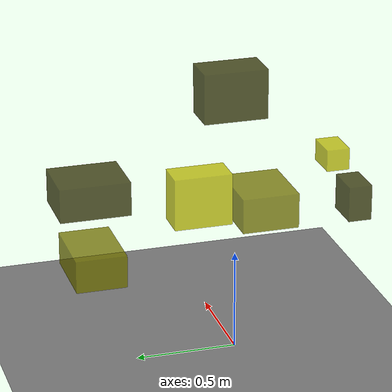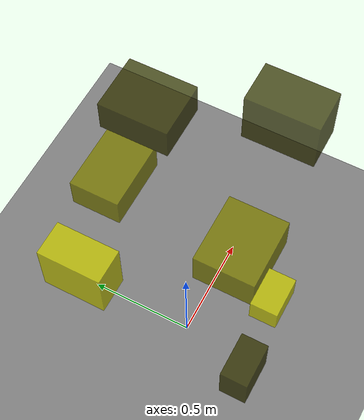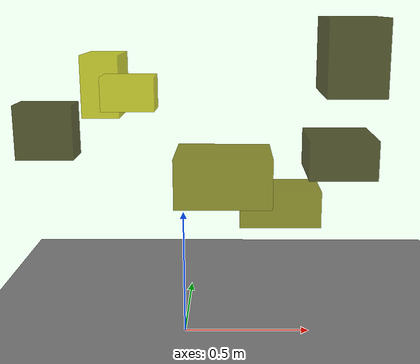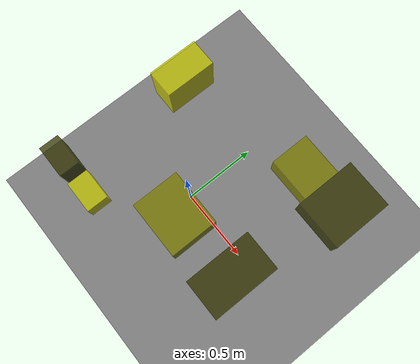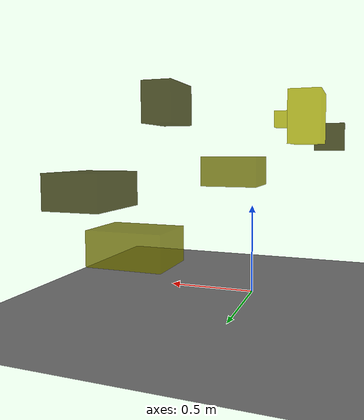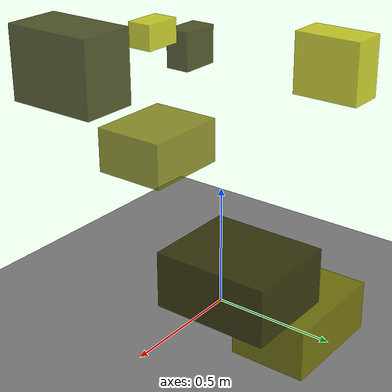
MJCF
<?xml version="1.0"?>
<mujoco model="obstacle_scene">
  <compiler angle="radian" coordinate="local"/>
  <option timestep="0.001" gravity="0 0 -9.81"/>

  <asset>
    <material name="obstacle_mat" rgba="0.8 0.8 0.0 0.8"/>
    <material name="ground_mat" rgba="0.5 0.5 0.5 1"/>
  </asset>

  <worldbody>
    <!-- Ground plane -->
    <geom name="ground" type="plane" size="3 3 0.1" material="ground_mat"/>

    <!-- Obstacles -->
    <body name="obstacle_0" pos="0.682416 0.563495 0.617803">
      <geom name="obs_0" type="box" size="0.152483 0.183952 0.089529" rgba="0.2 0.2 0.0 0.8"/>
    </body>
    <body name="obstacle_1" pos="0.159835 -0.180809 0.690235">
      <geom name="obs_1" type="box" size="0.170126 0.142446 0.088342" rgba="0.5 0.5 0.0 0.8"/>
    </body>
    <body name="obstacle_2" pos="-0.334407 0.282348 0.968864">
      <geom name="obs_2" type="box" size="0.075185 0.136611 0.123729" rgba="0.8 0.8 0.0 0.8"/>
    </body>
    <body name="obstacle_3" pos="0.603115 -0.164995 1.114078">
      <geom name="obs_3" type="box" size="0.100180 0.166610 0.130763" rgba="0.2 0.2 0.0 0.8"/>
    </body>
    <body name="obstacle_4" pos="0.413268 0.613148 0.365325">
      <geom name="obs_4" type="box" size="0.187653 0.129839 0.084593" rgba="0.5 0.5 0.0 0.8"/>
    </body>
    <body name="obstacle_5" pos="-0.130407 -0.441285 1.019521">
      <geom name="obs_5" type="box" size="0.083210 0.055165 0.052822" rgba="0.8 0.8 0.0 0.8"/>
    </body>
    <body name="obstacle_6" pos="-0.390299 -0.454211 0.902258">
      <geom name="obs_6" type="box" size="0.090566 0.055076 0.084849" rgba="0.2 0.2 0.0 0.8"/>
    </body>
  </worldbody>
</mujoco>
